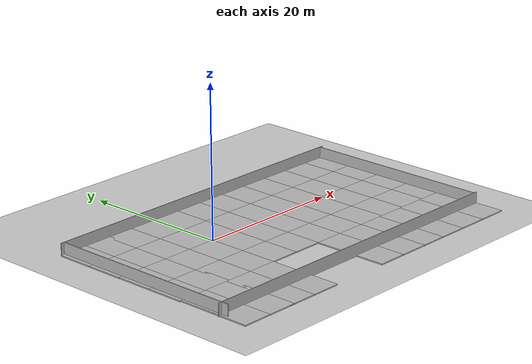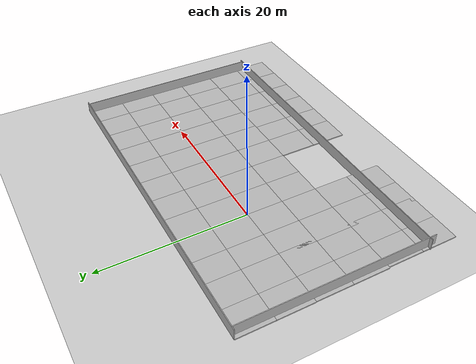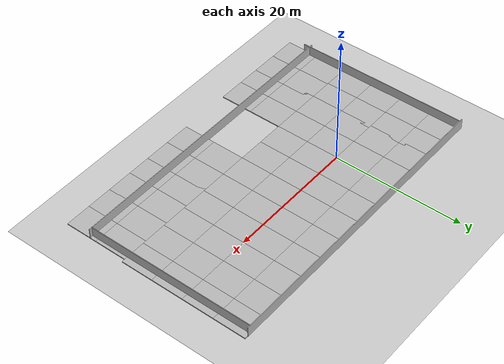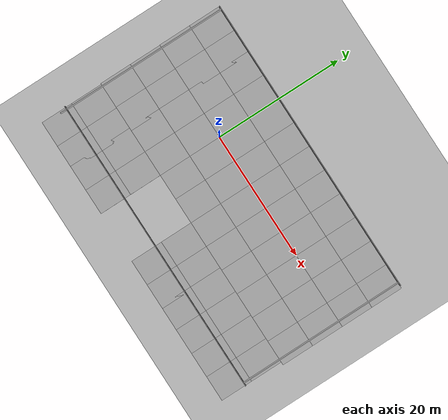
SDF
<sdf version="1.4">
 <world name="default">
  <light name="sun" type="directional">
   <pose>0 0 10 0 -0 0</pose>
   <diffuse>0.8 0.8 0.8 1</diffuse>
   <specular>0.2 0.2 0.2 1</specular>
   <attenuation>
    <range>1000</range>
    <constant>0.9</constant>
    <linear>0.01</linear>
    <quadratic>0.001</quadratic>
   </attenuation>
   <direction>-0.5 0.1 -0.9</direction>
  </light>
  <physics type="ode">
   <ode>
    <solver><type>quick</type><iters>1000</iters><sor>1.3</sor></solver>
    <constraints>
     <cfm>0</cfm>
     <erp>0.2</erp>
     <contact_max_correcting_vel>100</contact_max_correcting_vel>
     <contact_surface_layer>0.001</contact_surface_layer>
    </constraints>
   </ode>
   <max_step_size>0.01</max_step_size>
   <real_time_factor>1</real_time_factor>
   <real_time_update_rate>100</real_time_update_rate>
   <gravity>0 0 -9.8</gravity>
  </physics>
  <scene><ambient>0.4 0.4 0.4 1</ambient><background>0.7 0.7 0.7 1</background><shadows>1</shadows></scene>
  <spherical_coordinates>
   <surface_model>EARTH_WGS84</surface_model>
   <latitude_deg>0</latitude_deg>
   <longitude_deg>0</longitude_deg>
   <elevation>0</elevation>
   <heading_deg>0</heading_deg>
  </spherical_coordinates>
  <model name="ground_plane">
   <static>1</static>
   <link name="link">
    <collision name="collision">
     <geometry><plane><normal>0 0 1</normal><size>100 100</size></plane></geometry>
     <surface><friction><ode><mu>100</mu><mu2>50</mu2></ode></friction></surface>
    </collision>
    <visual name="visual">
     <cast_shadows>0</cast_shadows>
     <geometry><plane><normal>0 0 1</normal><size>100 100</size></plane></geometry>
     <material>
      <script><uri>file://media/materials/scripts/gazebo.material</uri><name>Gazebo/Grey</name></script>
     </material>
    </visual>
    <velocity_decay><linear>0</linear><angular>0</angular></velocity_decay>
   </link>
   <pose>17 -17 0 0 -0 0</pose>
  </model>
  <model name="mud_box_0">
   <static>1</static>
   <link name="link">
    <collision name="collision"><geometry><box><size>8 10 0.2</size></box></geometry></collision>
    <visual name="visual_1">
     <pose>-2 2.5 0 0 -0 0</pose>
     <cast_shadows>0</cast_shadows>
     <geometry><box><size>4 5 0.2</size></box></geometry>
     <material>
      <script>
       <uri>model://mud_box/materials/scripts</uri>
       <uri>model://mud_box/materials/textures</uri>
       <name>vrc/mud</name>
      </script>
     </material>
    </visual>
    <visual name="visual_2">
     <pose>2 2.5 0 0 -0 0</pose>
     <cast_shadows>0</cast_shadows>
     <geometry><box><size>4 5 0.2</size></box></geometry>
     <material>
      <script>
       <uri>model://mud_box/materials/scripts</uri>
       <uri>model://mud_box/materials/textures</uri>
       <name>vrc/mud</name>
      </script>
     </material>
    </visual>
    <visual name="visual_3">
     <pose>2 -2.5 0 0 -0 0</pose>
     <cast_shadows>0</cast_shadows>
     <geometry><box><size>4 5 0.2</size></box></geometry>
     <material>
      <script>
       <uri>model://mud_box/materials/scripts</uri>
       <uri>model://mud_box/materials/textures</uri>
       <name>vrc/mud</name>
      </script>
     </material>
    </visual>
    <visual name="visual_4">
     <pose>-2 -2.5 0 0 -0 0</pose>
     <cast_shadows>0</cast_shadows>
     <geometry><box><size>4 5 0.2</size></box></geometry>
     <material>
      <script>
       <uri>model://mud_box/materials/scripts</uri>
       <uri>model://mud_box/materials/textures</uri>
       <name>vrc/mud</name>
      </script>
     </material>
    </visual>
    <velocity_decay><linear>0</linear><angular>0</angular></velocity_decay>
   </link>
   <pose>4 5 0 0 -0 0</pose>
  </model>
  <model name="mud_box_1">
   <static>1</static>
   <link name="link">
    <collision name="collision"><geometry><box><size>8 10 0.2</size></box></geometry></collision>
    <visual name="visual_1">
     <pose>-2 2.5 0 0 -0 0</pose>
     <cast_shadows>0</cast_shadows>
     <geometry><box><size>4 5 0.2</size></box></geometry>
     <material>
      <script>
       <uri>model://mud_box/materials/scripts</uri>
       <uri>model://mud_box/materials/textures</uri>
       <name>vrc/mud</name>
      </script>
     </material>
    </visual>
    <visual name="visual_2">
     <pose>2 2.5 0 0 -0 0</pose>
     <cast_shadows>0</cast_shadows>
     <geometry><box><size>4 5 0.2</size></box></geometry>
     <material>
      <script>
       <uri>model://mud_box/materials/scripts</uri>
       <uri>model://mud_box/materials/textures</uri>
       <name>vrc/mud</name>
      </script>
     </material>
    </visual>
    <visual name="visual_3">
     <pose>2 -2.5 0 0 -0 0</pose>
     <cast_shadows>0</cast_shadows>
     <geometry><box><size>4 5 0.2</size></box></geometry>
     <material>
      <script>
       <uri>model://mud_box/materials/scripts</uri>
       <uri>model://mud_box/materials/textures</uri>
       <name>vrc/mud</name>
      </script>
     </material>
    </visual>
    <visual name="visual_4">
     <pose>-2 -2.5 0 0 -0 0</pose>
     <cast_shadows>0</cast_shadows>
     <geometry><box><size>4 5 0.2</size></box></geometry>
     <material>
      <script>
       <uri>model://mud_box/materials/scripts</uri>
       <uri>model://mud_box/materials/textures</uri>
       <name>vrc/mud</name>
      </script>
     </material>
    </visual>
    <velocity_decay><linear>0</linear><angular>0</angular></velocity_decay>
   </link>
   <pose>-4 -5 0 0 -0 0</pose>
  </model>
  <model name="mud_box_2">
   <static>1</static>
   <link name="link">
    <collision name="collision"><geometry><box><size>8 10 0.2</size></box></geometry></collision>
    <visual name="visual_1">
     <pose>-2 2.5 0 0 -0 0</pose>
     <cast_shadows>0</cast_shadows>
     <geometry><box><size>4 5 0.2</size></box></geometry>
     <material>
      <script>
       <uri>model://mud_box/materials/scripts</uri>
       <uri>model://mud_box/materials/textures</uri>
       <name>vrc/mud</name>
      </script>
     </material>
    </visual>
    <visual name="visual_2">
     <pose>2 2.5 0 0 -0 0</pose>
     <cast_shadows>0</cast_shadows>
     <geometry><box><size>4 5 0.2</size></box></geometry>
     <material>
      <script>
       <uri>model://mud_box/materials/scripts</uri>
       <uri>model://mud_box/materials/textures</uri>
       <name>vrc/mud</name>
      </script>
     </material>
    </visual>
    <visual name="visual_3">
     <pose>2 -2.5 0 0 -0 0</pose>
     <cast_shadows>0</cast_shadows>
     <geometry><box><size>4 5 0.2</size></box></geometry>
     <material>
      <script>
       <uri>model://mud_box/materials/scripts</uri>
       <uri>model://mud_box/materials/textures</uri>
       <name>vrc/mud</name>
      </script>
     </material>
    </visual>
    <visual name="visual_4">
     <pose>-2 -2.5 0 0 -0 0</pose>
     <cast_shadows>0</cast_shadows>
     <geometry><box><size>4 5 0.2</size></box></geometry>
     <material>
      <script>
       <uri>model://mud_box/materials/scripts</uri>
       <uri>model://mud_box/materials/textures</uri>
       <name>vrc/mud</name>
      </script>
     </material>
    </visual>
    <velocity_decay><linear>0</linear><angular>0</angular></velocity_decay>
   </link>
   <pose>4 -5 0 0 -0 0</pose>
  </model>
  <model name="mud_box_3">
   <static>1</static>
   <link name="link">
    <collision name="collision"><geometry><box><size>8 10 0.2</size></box></geometry></collision>
    <visual name="visual_1">
     <pose>-2 2.5 0 0 -0 0</pose>
     <cast_shadows>0</cast_shadows>
     <geometry><box><size>4 5 0.2</size></box></geometry>
     <material>
      <script>
       <uri>model://mud_box/materials/scripts</uri>
       <uri>model://mud_box/materials/textures</uri>
       <name>vrc/mud</name>
      </script>
     </material>
    </visual>
    <visual name="visual_2">
     <pose>2 2.5 0 0 -0 0</pose>
     <cast_shadows>0</cast_shadows>
     <geometry><box><size>4 5 0.2</size></box></geometry>
     <material>
      <script>
       <uri>model://mud_box/materials/scripts</uri>
       <uri>model://mud_box/materials/textures</uri>
       <name>vrc/mud</name>
      </script>
     </material>
    </visual>
    <visual name="visual_3">
     <pose>2 -2.5 0 0 -0 0</pose>
     <cast_shadows>0</cast_shadows>
     <geometry><box><size>4 5 0.2</size></box></geometry>
     <material>
      <script>
       <uri>model://mud_box/materials/scripts</uri>
       <uri>model://mud_box/materials/textures</uri>
       <name>vrc/mud</name>
      </script>
     </material>
    </visual>
    <visual name="visual_4">
     <pose>-2 -2.5 0 0 -0 0</pose>
     <cast_shadows>0</cast_shadows>
     <geometry><box><size>4 5 0.2</size></box></geometry>
     <material>
      <script>
       <uri>model://mud_box/materials/scripts</uri>
       <uri>model://mud_box/materials/textures</uri>
       <name>vrc/mud</name>
      </script>
     </material>
    </visual>
    <velocity_decay><linear>0</linear><angular>0</angular></velocity_decay>
   </link>
   <pose>12 5 0 0 -0 0</pose>
  </model>
  <model name="mud_box_4">
   <static>1</static>
   <link name="link">
    <collision name="collision"><geometry><box><size>8 10 0.2</size></box></geometry></collision>
    <visual name="visual_1">
     <pose>-2 2.5 0 0 -0 0</pose>
     <cast_shadows>0</cast_shadows>
     <geometry><box><size>4 5 0.2</size></box></geometry>
     <material>
      <script>
       <uri>model://mud_box/materials/scripts</uri>
       <uri>model://mud_box/materials/textures</uri>
       <name>vrc/mud</name>
      </script>
     </material>
    </visual>
    <visual name="visual_2">
     <pose>2 2.5 0 0 -0 0</pose>
     <cast_shadows>0</cast_shadows>
     <geometry><box><size>4 5 0.2</size></box></geometry>
     <material>
      <script>
       <uri>model://mud_box/materials/scripts</uri>
       <uri>model://mud_box/materials/textures</uri>
       <name>vrc/mud</name>
      </script>
     </material>
    </visual>
    <visual name="visual_3">
     <pose>2 -2.5 0 0 -0 0</pose>
     <cast_shadows>0</cast_shadows>
     <geometry><box><size>4 5 0.2</size></box></geometry>
     <material>
      <script>
       <uri>model://mud_box/materials/scripts</uri>
       <uri>model://mud_box/materials/textures</uri>
       <name>vrc/mud</name>
      </script>
     </material>
    </visual>
    <visual name="visual_4">
     <pose>-2 -2.5 0 0 -0 0</pose>
     <cast_shadows>0</cast_shadows>
     <geometry><box><size>4 5 0.2</size></box></geometry>
     <material>
      <script>
       <uri>model://mud_box/materials/scripts</uri>
       <uri>model://mud_box/materials/textures</uri>
       <name>vrc/mud</name>
      </script>
     </material>
    </visual>
    <velocity_decay><linear>0</linear><angular>0</angular></velocity_decay>
   </link>
   <pose>-4 5 0 0 -0 0</pose>
  </model>
  <model name="mud_box_5">
   <static>1</static>
   <link name="link">
    <collision name="collision"><geometry><box><size>8 10 0.2</size></box></geometry></collision>
    <visual name="visual_1">
     <pose>-2 2.5 0 0 -0 0</pose>
     <cast_shadows>0</cast_shadows>
     <geometry><box><size>4 5 0.2</size></box></geometry>
     <material>
      <script>
       <uri>model://mud_box/materials/scripts</uri>
       <uri>model://mud_box/materials/textures</uri>
       <name>vrc/mud</name>
      </script>
     </material>
    </visual>
    <visual name="visual_2">
     <pose>2 2.5 0 0 -0 0</pose>
     <cast_shadows>0</cast_shadows>
     <geometry><box><size>4 5 0.2</size></box></geometry>
     <material>
      <script>
       <uri>model://mud_box/materials/scripts</uri>
       <uri>model://mud_box/materials/textures</uri>
       <name>vrc/mud</name>
      </script>
     </material>
    </visual>
    <visual name="visual_3">
     <pose>2 -2.5 0 0 -0 0</pose>
     <cast_shadows>0</cast_shadows>
     <geometry><box><size>4 5 0.2</size></box></geometry>
     <material>
      <script>
       <uri>model://mud_box/materials/scripts</uri>
       <uri>model://mud_box/materials/textures</uri>
       <name>vrc/mud</name>
      </script>
     </material>
    </visual>
    <visual name="visual_4">
     <pose>-2 -2.5 0 0 -0 0</pose>
     <cast_shadows>0</cast_shadows>
     <geometry><box><size>4 5 0.2</size></box></geometry>
     <material>
      <script>
       <uri>model://mud_box/materials/scripts</uri>
       <uri>model://mud_box/materials/textures</uri>
       <name>vrc/mud</name>
      </script>
     </material>
    </visual>
    <velocity_decay><linear>0</linear><angular>0</angular></velocity_decay>
   </link>
   <pose>-11.5813 5 0 0 -0 0</pose>
  </model>
  <model name="mud_box_6">
   <static>1</static>
   <link name="link">
    <collision name="collision"><geometry><box><size>8 10 0.2</size></box></geometry></collision>
    <visual name="visual_1">
     <pose>-2 2.5 0 0 -0 0</pose>
     <cast_shadows>0</cast_shadows>
     <geometry><box><size>4 5 0.2</size></box></geometry>
     <material>
      <script>
       <uri>model://mud_box/materials/scripts</uri>
       <uri>model://mud_box/materials/textures</uri>
       <name>vrc/mud</name>
      </script>
     </material>
    </visual>
    <visual name="visual_2">
     <pose>2 2.5 0 0 -0 0</pose>
     <cast_shadows>0</cast_shadows>
     <geometry><box><size>4 5 0.2</size></box></geometry>
     <material>
      <script>
       <uri>model://mud_box/materials/scripts</uri>
       <uri>model://mud_box/materials/textures</uri>
       <name>vrc/mud</name>
      </script>
     </material>
    </visual>
    <visual name="visual_3">
     <pose>2 -2.5 0 0 -0 0</pose>
     <cast_shadows>0</cast_shadows>
     <geometry><box><size>4 5 0.2</size></box></geometry>
     <material>
      <script>
       <uri>model://mud_box/materials/scripts</uri>
       <uri>model://mud_box/materials/textures</uri>
       <name>vrc/mud</name>
      </script>
     </material>
    </visual>
    <visual name="visual_4">
     <pose>-2 -2.5 0 0 -0 0</pose>
     <cast_shadows>0</cast_shadows>
     <geometry><box><size>4 5 0.2</size></box></geometry>
     <material>
      <script>
       <uri>model://mud_box/materials/scripts</uri>
       <uri>model://mud_box/materials/textures</uri>
       <name>vrc/mud</name>
      </script>
     </material>
    </visual>
    <velocity_decay><linear>0</linear><angular>0</angular></velocity_decay>
   </link>
   <pose>-11.5408 -5 0 0 -0 0</pose>
  </model>
  <model name="mud_box_7">
   <static>1</static>
   <link name="link">
    <collision name="collision"><geometry><box><size>8 10 0.2</size></box></geometry></collision>
    <visual name="visual_1">
     <pose>-2 2.5 0 0 -0 0</pose>
     <cast_shadows>0</cast_shadows>
     <geometry><box><size>4 5 0.2</size></box></geometry>
     <material>
      <script>
       <uri>model://mud_box/materials/scripts</uri>
       <uri>model://mud_box/materials/textures</uri>
       <name>vrc/mud</name>
      </script>
     </material>
    </visual>
    <visual name="visual_2">
     <pose>2 2.5 0 0 -0 0</pose>
     <cast_shadows>0</cast_shadows>
     <geometry><box><size>4 5 0.2</size></box></geometry>
     <material>
      <script>
       <uri>model://mud_box/materials/scripts</uri>
       <uri>model://mud_box/materials/textures</uri>
       <name>vrc/mud</name>
      </script>
     </material>
    </visual>
    <visual name="visual_3">
     <pose>2 -2.5 0 0 -0 0</pose>
     <cast_shadows>0</cast_shadows>
     <geometry><box><size>4 5 0.2</size></box></geometry>
     <material>
      <script>
       <uri>model://mud_box/materials/scripts</uri>
       <uri>model://mud_box/materials/textures</uri>
       <name>vrc/mud</name>
      </script>
     </material>
    </visual>
    <visual name="visual_4">
     <pose>-2 -2.5 0 0 -0 0</pose>
     <cast_shadows>0</cast_shadows>
     <geometry><box><size>4 5 0.2</size></box></geometry>
     <material>
      <script>
       <uri>model://mud_box/materials/scripts</uri>
       <uri>model://mud_box/materials/textures</uri>
       <name>vrc/mud</name>
      </script>
     </material>
    </visual>
    <velocity_decay><linear>0</linear><angular>0</angular></velocity_decay>
   </link>
   <pose>-11.4023 -15 0 0 -0 0</pose>
  </model>
  <model name="mud_box_8">
   <static>1</static>
   <link name="link">
    <collision name="collision"><geometry><box><size>8 10 0.2</size></box></geometry></collision>
    <visual name="visual_1">
     <pose>-2 2.5 0 0 -0 0</pose>
     <cast_shadows>0</cast_shadows>
     <geometry><box><size>4 5 0.2</size></box></geometry>
     <material>
      <script>
       <uri>model://mud_box/materials/scripts</uri>
       <uri>model://mud_box/materials/textures</uri>
       <name>vrc/mud</name>
      </script>
     </material>
    </visual>
    <visual name="visual_2">
     <pose>2 2.5 0 0 -0 0</pose>
     <cast_shadows>0</cast_shadows>
     <geometry><box><size>4 5 0.2</size></box></geometry>
     <material>
      <script>
       <uri>model://mud_box/materials/scripts</uri>
       <uri>model://mud_box/materials/textures</uri>
       <name>vrc/mud</name>
      </script>
     </material>
    </visual>
    <visual name="visual_3">
     <pose>2 -2.5 0 0 -0 0</pose>
     <cast_shadows>0</cast_shadows>
     <geometry><box><size>4 5 0.2</size></box></geometry>
     <material>
      <script>
       <uri>model://mud_box/materials/scripts</uri>
       <uri>model://mud_box/materials/textures</uri>
       <name>vrc/mud</name>
      </script>
     </material>
    </visual>
    <visual name="visual_4">
     <pose>-2 -2.5 0 0 -0 0</pose>
     <cast_shadows>0</cast_shadows>
     <geometry><box><size>4 5 0.2</size></box></geometry>
     <material>
      <script>
       <uri>model://mud_box/materials/scripts</uri>
       <uri>model://mud_box/materials/textures</uri>
       <name>vrc/mud</name>
      </script>
     </material>
    </visual>
    <velocity_decay><linear>0</linear><angular>0</angular></velocity_decay>
   </link>
   <pose>-4 -15 0 0 -0 0</pose>
  </model>
  <model name="mud_box_9">
   <static>1</static>
   <link name="link">
    <collision name="collision"><geometry><box><size>8 10 0.2</size></box></geometry></collision>
    <visual name="visual_1">
     <pose>-2 2.5 0 0 -0 0</pose>
     <cast_shadows>0</cast_shadows>
     <geometry><box><size>4 5 0.2</size></box></geometry>
     <material>
      <script>
       <uri>model://mud_box/materials/scripts</uri>
       <uri>model://mud_box/materials/textures</uri>
       <name>vrc/mud</name>
      </script>
     </material>
    </visual>
    <visual name="visual_2">
     <pose>2 2.5 0 0 -0 0</pose>
     <cast_shadows>0</cast_shadows>
     <geometry><box><size>4 5 0.2</size></box></geometry>
     <material>
      <script>
       <uri>model://mud_box/materials/scripts</uri>
       <uri>model://mud_box/materials/textures</uri>
       <name>vrc/mud</name>
      </script>
     </material>
    </visual>
    <visual name="visual_3">
     <pose>2 -2.5 0 0 -0 0</pose>
     <cast_shadows>0</cast_shadows>
     <geometry><box><size>4 5 0.2</size></box></geometry>
     <material>
      <script>
       <uri>model://mud_box/materials/scripts</uri>
       <uri>model://mud_box/materials/textures</uri>
       <name>vrc/mud</name>
      </script>
     </material>
    </visual>
    <visual name="visual_4">
     <pose>-2 -2.5 0 0 -0 0</pose>
     <cast_shadows>0</cast_shadows>
     <geometry><box><size>4 5 0.2</size></box></geometry>
     <material>
      <script>
       <uri>model://mud_box/materials/scripts</uri>
       <uri>model://mud_box/materials/textures</uri>
       <name>vrc/mud</name>
      </script>
     </material>
    </visual>
    <velocity_decay><linear>0</linear><angular>0</angular></velocity_decay>
   </link>
   <pose>12 -5 0 0 -0 0</pose>
  </model>
  <model name="mud_box_10">
   <static>1</static>
   <link name="link">
    <collision name="collision"><geometry><box><size>8 10 0.2</size></box></geometry></collision>
    <visual name="visual_1">
     <pose>-2 2.5 0 0 -0 0</pose>
     <cast_shadows>0</cast_shadows>
     <geometry><box><size>4 5 0.2</size></box></geometry>
     <material>
      <script>
       <uri>model://mud_box/materials/scripts</uri>
       <uri>model://mud_box/materials/textures</uri>
       <name>vrc/mud</name>
      </script>
     </material>
    </visual>
    <visual name="visual_2">
     <pose>2 2.5 0 0 -0 0</pose>
     <cast_shadows>0</cast_shadows>
     <geometry><box><size>4 5 0.2</size></box></geometry>
     <material>
      <script>
       <uri>model://mud_box/materials/scripts</uri>
       <uri>model://mud_box/materials/textures</uri>
       <name>vrc/mud</name>
      </script>
     </material>
    </visual>
    <visual name="visual_3">
     <pose>2 -2.5 0 0 -0 0</pose>
     <cast_shadows>0</cast_shadows>
     <geometry><box><size>4 5 0.2</size></box></geometry>
     <material>
      <script>
       <uri>model://mud_box/materials/scripts</uri>
       <uri>model://mud_box/materials/textures</uri>
       <name>vrc/mud</name>
      </script>
     </material>
    </visual>
    <visual name="visual_4">
     <pose>-2 -2.5 0 0 -0 0</pose>
     <cast_shadows>0</cast_shadows>
     <geometry><box><size>4 5 0.2</size></box></geometry>
     <material>
      <script>
       <uri>model://mud_box/materials/scripts</uri>
       <uri>model://mud_box/materials/textures</uri>
       <name>vrc/mud</name>
      </script>
     </material>
    </visual>
    <velocity_decay><linear>0</linear><angular>0</angular></velocity_decay>
   </link>
   <pose>20 5 0 0 -0 0</pose>
  </model>
  <model name="mud_box_11">
   <static>1</static>
   <link name="link">
    <collision name="collision"><geometry><box><size>8 10 0.2</size></box></geometry></collision>
    <visual name="visual_1">
     <pose>-2 2.5 0 0 -0 0</pose>
     <cast_shadows>0</cast_shadows>
     <geometry><box><size>4 5 0.2</size></box></geometry>
     <material>
      <script>
       <uri>model://mud_box/materials/scripts</uri>
       <uri>model://mud_box/materials/textures</uri>
       <name>vrc/mud</name>
      </script>
     </material>
    </visual>
    <visual name="visual_2">
     <pose>2 2.5 0 0 -0 0</pose>
     <cast_shadows>0</cast_shadows>
     <geometry><box><size>4 5 0.2</size></box></geometry>
     <material>
      <script>
       <uri>model://mud_box/materials/scripts</uri>
       <uri>model://mud_box/materials/textures</uri>
       <name>vrc/mud</name>
      </script>
     </material>
    </visual>
    <visual name="visual_3">
     <pose>2 -2.5 0 0 -0 0</pose>
     <cast_shadows>0</cast_shadows>
     <geometry><box><size>4 5 0.2</size></box></geometry>
     <material>
      <script>
       <uri>model://mud_box/materials/scripts</uri>
       <uri>model://mud_box/materials/textures</uri>
       <name>vrc/mud</name>
      </script>
     </material>
    </visual>
    <visual name="visual_4">
     <pose>-2 -2.5 0 0 -0 0</pose>
     <cast_shadows>0</cast_shadows>
     <geometry><box><size>4 5 0.2</size></box></geometry>
     <material>
      <script>
       <uri>model://mud_box/materials/scripts</uri>
       <uri>model://mud_box/materials/textures</uri>
       <name>vrc/mud</name>
      </script>
     </material>
    </visual>
    <velocity_decay><linear>0</linear><angular>0</angular></velocity_decay>
   </link>
   <pose>20 -5 0 0 -0 0</pose>
  </model>
  <model name="mud_box_12">
   <static>1</static>
   <link name="link">
    <collision name="collision"><geometry><box><size>8 10 0.2</size></box></geometry></collision>
    <visual name="visual_1">
     <pose>-2 2.5 0 0 -0 0</pose>
     <cast_shadows>0</cast_shadows>
     <geometry><box><size>4 5 0.2</size></box></geometry>
     <material>
      <script>
       <uri>model://mud_box/materials/scripts</uri>
       <uri>model://mud_box/materials/textures</uri>
       <name>vrc/mud</name>
      </script>
     </material>
    </visual>
    <visual name="visual_2">
     <pose>2 2.5 0 0 -0 0</pose>
     <cast_shadows>0</cast_shadows>
     <geometry><box><size>4 5 0.2</size></box></geometry>
     <material>
      <script>
       <uri>model://mud_box/materials/scripts</uri>
       <uri>model://mud_box/materials/textures</uri>
       <name>vrc/mud</name>
      </script>
     </material>
    </visual>
    <visual name="visual_3">
     <pose>2 -2.5 0 0 -0 0</pose>
     <cast_shadows>0</cast_shadows>
     <geometry><box><size>4 5 0.2</size></box></geometry>
     <material>
      <script>
       <uri>model://mud_box/materials/scripts</uri>
       <uri>model://mud_box/materials/textures</uri>
       <name>vrc/mud</name>
      </script>
     </material>
    </visual>
    <visual name="visual_4">
     <pose>-2 -2.5 0 0 -0 0</pose>
     <cast_shadows>0</cast_shadows>
     <geometry><box><size>4 5 0.2</size></box></geometry>
     <material>
      <script>
       <uri>model://mud_box/materials/scripts</uri>
       <uri>model://mud_box/materials/textures</uri>
       <name>vrc/mud</name>
      </script>
     </material>
    </visual>
    <velocity_decay><linear>0</linear><angular>0</angular></velocity_decay>
   </link>
   <pose>28 5 0 0 -0 0</pose>
  </model>
  <model name="wall_0">
   <static>1</static>
   <link name="link">
    <collision name="collision"><geometry><box><size>47 0.1 3</size></box></geometry></collision>
    <visual name="visual_1">
     <cast_shadows>0</cast_shadows>
     <geometry><box><size>47 0.1 3</size></box></geometry>
     <material>
      <script>
       <uri>model://mud_box/materials/scripts</uri>
       <uri>model://mud_box/materials/textures</uri>
       <name>vrc/mud</name>
      </script>
     </material>
    </visual>
    <velocity_decay><linear>0</linear><angular>0</angular></velocity_decay>
   </link>
   <pose>8 10 0.1 0 -0 0</pose>
  </model>
  <model name="wall_1">
   <static>1</static>
   <link name="link">
    <collision name="collision"><geometry><box><size>0.1 26 3</size></box></geometry></collision>
    <visual name="visual_1">
     <cast_shadows>0</cast_shadows>
     <geometry><box><size>0.1 26 3</size></box></geometry>
     <material>
      <script>
       <uri>model://mud_box/materials/scripts</uri>
       <uri>model://mud_box/materials/textures</uri>
       <name>vrc/mud</name>
      </script>
     </material>
    </visual>
    <velocity_decay><linear>0</linear><angular>0</angular></velocity_decay>
   </link>
   <pose>31 -3 0.1 0 -0 0</pose>
  </model>
  <model name="wall_2">
   <static>1</static>
   <link name="link">
    <collision name="collision"><geometry><box><size>0.1 27 3</size></box></geometry></collision>
    <visual name="visual_1">
     <cast_shadows>0</cast_shadows>
     <geometry><box><size>0.1 27 3</size></box></geometry>
     <material>
      <script>
       <uri>model://mud_box/materials/scripts</uri>
       <uri>model://mud_box/materials/textures</uri>
       <name>vrc/mud</name>
      </script>
     </material>
    </visual>
    <velocity_decay><linear>0</linear><angular>0</angular></velocity_decay>
   </link>
   <pose>-15 -3.5 0.1 0 -0 0</pose>
  </model>
  <model name="wall_3">
   <static>1</static>
   <link name="link">
    <collision name="collision"><geometry><box><size>47 0.1 3</size></box></geometry></collision>
    <visual name="visual_1">
     <cast_shadows>0</cast_shadows>
     <geometry><box><size>47 0.1 3</size></box></geometry>
     <material>
      <script>
       <uri>model://mud_box/materials/scripts</uri>
       <uri>model://mud_box/materials/textures</uri>
       <name>vrc/mud</name>
      </script>
     </material>
    </visual>
    <velocity_decay><linear>0</linear><angular>0</angular></velocity_decay>
   </link>
   <pose>8 -16 0.1 0 -0 0</pose>
  </model>
  <model name="mud_box_13">
   <static>1</static>
   <link name="link">
    <collision name="collision"><geometry><box><size>8 10 0.2</size></box></geometry></collision>
    <visual name="visual_1">
     <pose>-2 2.5 0 0 -0 0</pose>
     <cast_shadows>0</cast_shadows>
     <geometry><box><size>4 5 0.2</size></box></geometry>
     <material>
      <script>
       <uri>model://mud_box/materials/scripts</uri>
       <uri>model://mud_box/materials/textures</uri>
       <name>vrc/mud</name>
      </script>
     </material>
    </visual>
    <visual name="visual_2">
     <pose>2 2.5 0 0 -0 0</pose>
     <cast_shadows>0</cast_shadows>
     <geometry><box><size>4 5 0.2</size></box></geometry>
     <material>
      <script>
       <uri>model://mud_box/materials/scripts</uri>
       <uri>model://mud_box/materials/textures</uri>
       <name>vrc/mud</name>
      </script>
     </material>
    </visual>
    <visual name="visual_3">
     <pose>2 -2.5 0 0 -0 0</pose>
     <cast_shadows>0</cast_shadows>
     <geometry><box><size>4 5 0.2</size></box></geometry>
     <material>
      <script>
       <uri>model://mud_box/materials/scripts</uri>
       <uri>model://mud_box/materials/textures</uri>
       <name>vrc/mud</name>
      </script>
     </material>
    </visual>
    <visual name="visual_4">
     <pose>-2 -2.5 0 0 -0 0</pose>
     <cast_shadows>0</cast_shadows>
     <geometry><box><size>4 5 0.2</size></box></geometry>
     <material>
      <script>
       <uri>model://mud_box/materials/scripts</uri>
       <uri>model://mud_box/materials/textures</uri>
       <name>vrc/mud</name>
      </script>
     </material>
    </visual>
    <velocity_decay><linear>0</linear><angular>0</angular></velocity_decay>
   </link>
   <pose>28 -5 0 0 -0 0</pose>
  </model>
  <model name="mud_box_14">
   <static>1</static>
   <link name="link">
    <collision name="collision"><geometry><box><size>8 10 0.2</size></box></geometry></collision>
    <visual name="visual_1">
     <pose>-2 2.5 0 0 -0 0</pose>
     <cast_shadows>0</cast_shadows>
     <geometry><box><size>4 5 0.2</size></box></geometry>
     <material>
      <script>
       <uri>model://mud_box/materials/scripts</uri>
       <uri>model://mud_box/materials/textures</uri>
       <name>vrc/mud</name>
      </script>
     </material>
    </visual>
    <visual name="visual_2">
     <pose>2 2.5 0 0 -0 0</pose>
     <cast_shadows>0</cast_shadows>
     <geometry><box><size>4 5 0.2</size></box></geometry>
     <material>
      <script>
       <uri>model://mud_box/materials/scripts</uri>
       <uri>model://mud_box/materials/textures</uri>
       <name>vrc/mud</name>
      </script>
     </material>
    </visual>
    <visual name="visual_3">
     <pose>2 -2.5 0 0 -0 0</pose>
     <cast_shadows>0</cast_shadows>
     <geometry><box><size>4 5 0.2</size></box></geometry>
     <material>
      <script>
       <uri>model://mud_box/materials/scripts</uri>
       <uri>model://mud_box/materials/textures</uri>
       <name>vrc/mud</name>
      </script>
     </material>
    </visual>
    <visual name="visual_4">
     <pose>-2 -2.5 0 0 -0 0</pose>
     <cast_shadows>0</cast_shadows>
     <geometry><box><size>4 5 0.2</size></box></geometry>
     <material>
      <script>
       <uri>model://mud_box/materials/scripts</uri>
       <uri>model://mud_box/materials/textures</uri>
       <name>vrc/mud</name>
      </script>
     </material>
    </visual>
    <velocity_decay><linear>0</linear><angular>0</angular></velocity_decay>
   </link>
   <pose>27.5166 -15 0 0 -0 0</pose>
  </model>
  <model name="mud_box_15">
   <static>1</static>
   <link name="link">
    <collision name="collision"><geometry><box><size>8 10 0.2</size></box></geometry></collision>
    <visual name="visual_1">
     <pose>-2 2.5 0 0 -0 0</pose>
     <cast_shadows>0</cast_shadows>
     <geometry><box><size>4 5 0.2</size></box></geometry>
     <material>
      <script>
       <uri>model://mud_box/materials/scripts</uri>
       <uri>model://mud_box/materials/textures</uri>
       <name>vrc/mud</name>
      </script>
     </material>
    </visual>
    <visual name="visual_2">
     <pose>2 2.5 0 0 -0 0</pose>
     <cast_shadows>0</cast_shadows>
     <geometry><box><size>4 5 0.2</size></box></geometry>
     <material>
      <script>
       <uri>model://mud_box/materials/scripts</uri>
       <uri>model://mud_box/materials/textures</uri>
       <name>vrc/mud</name>
      </script>
     </material>
    </visual>
    <visual name="visual_3">
     <pose>2 -2.5 0 0 -0 0</pose>
     <cast_shadows>0</cast_shadows>
     <geometry><box><size>4 5 0.2</size></box></geometry>
     <material>
      <script>
       <uri>model://mud_box/materials/scripts</uri>
       <uri>model://mud_box/materials/textures</uri>
       <name>vrc/mud</name>
      </script>
     </material>
    </visual>
    <visual name="visual_4">
     <pose>-2 -2.5 0 0 -0 0</pose>
     <cast_shadows>0</cast_shadows>
     <geometry><box><size>4 5 0.2</size></box></geometry>
     <material>
      <script>
       <uri>model://mud_box/materials/scripts</uri>
       <uri>model://mud_box/materials/textures</uri>
       <name>vrc/mud</name>
      </script>
     </material>
    </visual>
    <velocity_decay><linear>0</linear><angular>0</angular></velocity_decay>
   </link>
   <pose>19.5897 -15 0 0 -0 0</pose>
  </model>
  <model name="mud_box_16">
   <static>1</static>
   <link name="link">
    <collision name="collision"><geometry><box><size>8 10 0.2</size></box></geometry></collision>
    <visual name="visual_1">
     <pose>-2 2.5 0 0 -0 0</pose>
     <cast_shadows>0</cast_shadows>
     <geometry><box><size>4 5 0.2</size></box></geometry>
     <material>
      <script>
       <uri>model://mud_box/materials/scripts</uri>
       <uri>model://mud_box/materials/textures</uri>
       <name>vrc/mud</name>
      </script>
     </material>
    </visual>
    <visual name="visual_2">
     <pose>2 2.5 0 0 -0 0</pose>
     <cast_shadows>0</cast_shadows>
     <geometry><box><size>4 5 0.2</size></box></geometry>
     <material>
      <script>
       <uri>model://mud_box/materials/scripts</uri>
       <uri>model://mud_box/materials/textures</uri>
       <name>vrc/mud</name>
      </script>
     </material>
    </visual>
    <visual name="visual_3">
     <pose>2 -2.5 0 0 -0 0</pose>
     <cast_shadows>0</cast_shadows>
     <geometry><box><size>4 5 0.2</size></box></geometry>
     <material>
      <script>
       <uri>model://mud_box/materials/scripts</uri>
       <uri>model://mud_box/materials/textures</uri>
       <name>vrc/mud</name>
      </script>
     </material>
    </visual>
    <visual name="visual_4">
     <pose>-2 -2.5 0 0 -0 0</pose>
     <cast_shadows>0</cast_shadows>
     <geometry><box><size>4 5 0.2</size></box></geometry>
     <material>
      <script>
       <uri>model://mud_box/materials/scripts</uri>
       <uri>model://mud_box/materials/textures</uri>
       <name>vrc/mud</name>
      </script>
     </material>
    </visual>
    <velocity_decay><linear>0</linear><angular>0</angular></velocity_decay>
   </link>
   <pose>12 -15 0 0 -0 0</pose>
  </model>
 </world>
</sdf>
